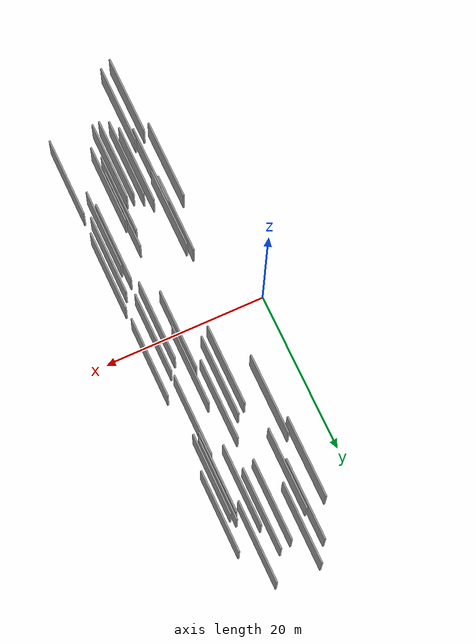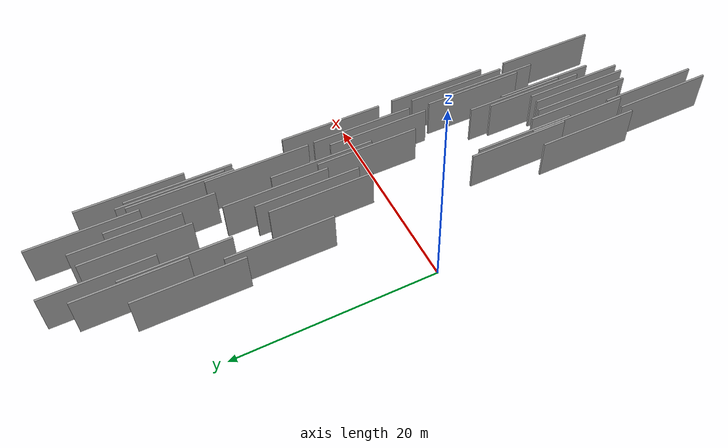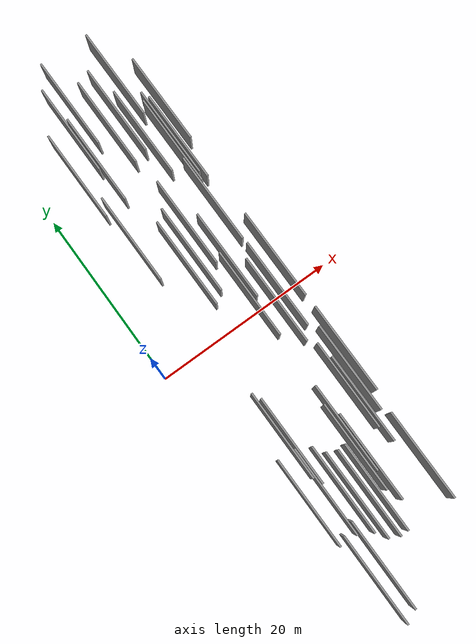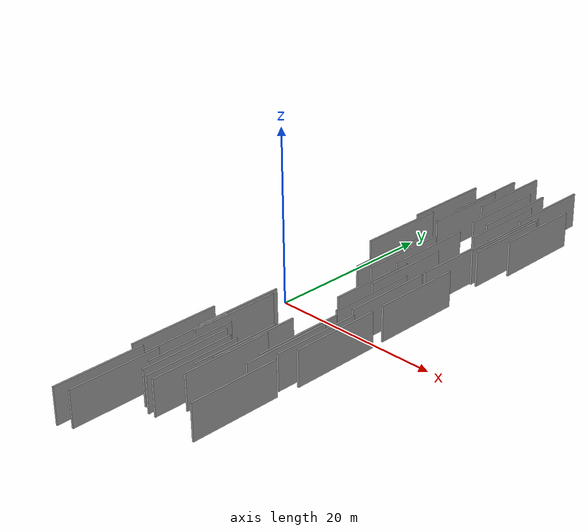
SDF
<sdf version="1.6">
 <world name="default">
  <scene>
   <sky><clouds><speed>12</speed></clouds></sky>
   <ambient>0.4 0.4 0.4 1</ambient>
   <background>0.7 0.7 0.7 1</background>
   <shadows>1</shadows>
  </scene>
  <gravity>0 0 -9.8066</gravity>
  <magnetic_field>6e-06 2.3e-05 -4.2e-05</magnetic_field>
  <physics default="0" name="default_physics" type="ode">
   <ode>
    <solver>
     <type>quick</type>
     <iters>10</iters>
     <sor>1.0</sor>
     <use_dynamic_moi_rescaling>0</use_dynamic_moi_rescaling>
    </solver>
    <constraints>
     <cfm>0</cfm>
     <erp>0.2</erp>
     <contact_max_correcting_vel>100</contact_max_correcting_vel>
     <contact_surface_layer>0.001</contact_surface_layer>
    </constraints>
   </ode>
   <max_step_size>0.004</max_step_size>
   <real_time_factor>1</real_time_factor>
   <real_time_update_rate>250</real_time_update_rate>
  </physics>
  <light name="sun" type="directional">
   <pose>0 0 10 0 0 0</pose>
   <diffuse>0.8 0.8 0.8 1</diffuse>
   <specular>0.2 0.2 0.2 1</specular>
   <attenuation>
    <range>1000</range>
    <constant>0.9</constant>
    <linear>0.01</linear>
    <quadratic>0.001</quadratic>
   </attenuation>
   <direction>-0.5 0.1 -0.9</direction>
  </light>
  <model name="grey_wall_1">
   <static>1</static>
   <pose>12.4541 20.6578 2.5 0.000000 0.000000 1.570796</pose>
   <link name="link">
    <pose>0 0 2.00 0 0 0</pose>
    <collision name="collision"><geometry><box><size>10.00 0.2 4.00</size></box></geometry></collision>
    <visual name="visual">
     <cast_shadows>0</cast_shadows>
     <geometry><box><size>10.00 0.2 4.00</size></box></geometry>
     <material>
      <script>
       <uri>model://grey_wall/materials/scripts</uri>
       <uri>model://grey_wall/materials/textures</uri>
       <name>vrc/grey_wall</name>
      </script>
     </material>
    </visual>
   </link>
  </model>
  <model name="grey_wall_2">
   <static>1</static>
   <pose>13.5971 27.1170 2.5 0.000000 0.000000 1.570796</pose>
   <link name="link">
    <pose>0 0 2.00 0 0 0</pose>
    <collision name="collision"><geometry><box><size>10.00 0.2 4.00</size></box></geometry></collision>
    <visual name="visual">
     <cast_shadows>0</cast_shadows>
     <geometry><box><size>10.00 0.2 4.00</size></box></geometry>
     <material>
      <script>
       <uri>model://grey_wall/materials/scripts</uri>
       <uri>model://grey_wall/materials/textures</uri>
       <name>vrc/grey_wall</name>
      </script>
     </material>
    </visual>
   </link>
  </model>
  <model name="grey_wall_3">
   <static>1</static>
   <pose>6.0778 -18.3121 2.5 0.000000 0.000000 1.570796</pose>
   <link name="link">
    <pose>0 0 2.00 0 0 0</pose>
    <collision name="collision"><geometry><box><size>10.00 0.2 4.00</size></box></geometry></collision>
    <visual name="visual">
     <cast_shadows>0</cast_shadows>
     <geometry><box><size>10.00 0.2 4.00</size></box></geometry>
     <material>
      <script>
       <uri>model://grey_wall/materials/scripts</uri>
       <uri>model://grey_wall/materials/textures</uri>
       <name>vrc/grey_wall</name>
      </script>
     </material>
    </visual>
   </link>
  </model>
  <model name="grey_wall_4">
   <static>1</static>
   <pose>15.9182 22.3405 2.5 0.000000 0.000000 1.570796</pose>
   <link name="link">
    <pose>0 0 2.00 0 0 0</pose>
    <collision name="collision"><geometry><box><size>10.00 0.2 4.00</size></box></geometry></collision>
    <visual name="visual">
     <cast_shadows>0</cast_shadows>
     <geometry><box><size>10.00 0.2 4.00</size></box></geometry>
     <material>
      <script>
       <uri>model://grey_wall/materials/scripts</uri>
       <uri>model://grey_wall/materials/textures</uri>
       <name>vrc/grey_wall</name>
      </script>
     </material>
    </visual>
   </link>
  </model>
  <model name="grey_wall_5">
   <static>1</static>
   <pose>8.2808 -20.3169 2.5 0.000000 0.000000 1.570796</pose>
   <link name="link">
    <pose>0 0 2.00 0 0 0</pose>
    <collision name="collision"><geometry><box><size>10.00 0.2 4.00</size></box></geometry></collision>
    <visual name="visual">
     <cast_shadows>0</cast_shadows>
     <geometry><box><size>10.00 0.2 4.00</size></box></geometry>
     <material>
      <script>
       <uri>model://grey_wall/materials/scripts</uri>
       <uri>model://grey_wall/materials/textures</uri>
       <name>vrc/grey_wall</name>
      </script>
     </material>
    </visual>
   </link>
  </model>
  <model name="grey_wall_6">
   <static>1</static>
   <pose>4.9916 -27.6208 2.5 0.000000 0.000000 1.570796</pose>
   <link name="link">
    <pose>0 0 2.00 0 0 0</pose>
    <collision name="collision"><geometry><box><size>10.00 0.2 4.00</size></box></geometry></collision>
    <visual name="visual">
     <cast_shadows>0</cast_shadows>
     <geometry><box><size>10.00 0.2 4.00</size></box></geometry>
     <material>
      <script>
       <uri>model://grey_wall/materials/scripts</uri>
       <uri>model://grey_wall/materials/textures</uri>
       <name>vrc/grey_wall</name>
      </script>
     </material>
    </visual>
   </link>
  </model>
  <model name="grey_wall_7">
   <static>1</static>
   <pose>14.3110 18.1891 2.5 0.000000 0.000000 1.570796</pose>
   <link name="link">
    <pose>0 0 2.00 0 0 0</pose>
    <collision name="collision"><geometry><box><size>10.00 0.2 4.00</size></box></geometry></collision>
    <visual name="visual">
     <cast_shadows>0</cast_shadows>
     <geometry><box><size>10.00 0.2 4.00</size></box></geometry>
     <material>
      <script>
       <uri>model://grey_wall/materials/scripts</uri>
       <uri>model://grey_wall/materials/textures</uri>
       <name>vrc/grey_wall</name>
      </script>
     </material>
    </visual>
   </link>
  </model>
  <model name="grey_wall_8">
   <static>1</static>
   <pose>15.8094 -8.4592 2.5 0.000000 0.000000 1.570796</pose>
   <link name="link">
    <pose>0 0 2.00 0 0 0</pose>
    <collision name="collision"><geometry><box><size>10.00 0.2 4.00</size></box></geometry></collision>
    <visual name="visual">
     <cast_shadows>0</cast_shadows>
     <geometry><box><size>10.00 0.2 4.00</size></box></geometry>
     <material>
      <script>
       <uri>model://grey_wall/materials/scripts</uri>
       <uri>model://grey_wall/materials/textures</uri>
       <name>vrc/grey_wall</name>
      </script>
     </material>
    </visual>
   </link>
  </model>
  <model name="grey_wall_9">
   <static>1</static>
   <pose>9.3929 8.1544 2.5 0.000000 0.000000 1.570796</pose>
   <link name="link">
    <pose>0 0 2.00 0 0 0</pose>
    <collision name="collision"><geometry><box><size>10.00 0.2 4.00</size></box></geometry></collision>
    <visual name="visual">
     <cast_shadows>0</cast_shadows>
     <geometry><box><size>10.00 0.2 4.00</size></box></geometry>
     <material>
      <script>
       <uri>model://grey_wall/materials/scripts</uri>
       <uri>model://grey_wall/materials/textures</uri>
       <name>vrc/grey_wall</name>
      </script>
     </material>
    </visual>
   </link>
  </model>
  <model name="grey_wall_10">
   <static>1</static>
   <pose>11.5870 23.9540 2.5 0.000000 0.000000 1.570796</pose>
   <link name="link">
    <pose>0 0 2.00 0 0 0</pose>
    <collision name="collision"><geometry><box><size>10.00 0.2 4.00</size></box></geometry></collision>
    <visual name="visual">
     <cast_shadows>0</cast_shadows>
     <geometry><box><size>10.00 0.2 4.00</size></box></geometry>
     <material>
      <script>
       <uri>model://grey_wall/materials/scripts</uri>
       <uri>model://grey_wall/materials/textures</uri>
       <name>vrc/grey_wall</name>
      </script>
     </material>
    </visual>
   </link>
  </model>
  <model name="grey_wall_11">
   <static>1</static>
   <pose>6.7561 24.9841 2.5 0.000000 0.000000 1.570796</pose>
   <link name="link">
    <pose>0 0 2.00 0 0 0</pose>
    <collision name="collision"><geometry><box><size>10.00 0.2 4.00</size></box></geometry></collision>
    <visual name="visual">
     <cast_shadows>0</cast_shadows>
     <geometry><box><size>10.00 0.2 4.00</size></box></geometry>
     <material>
      <script>
       <uri>model://grey_wall/materials/scripts</uri>
       <uri>model://grey_wall/materials/textures</uri>
       <name>vrc/grey_wall</name>
      </script>
     </material>
    </visual>
   </link>
  </model>
  <model name="grey_wall_12">
   <static>1</static>
   <pose>4.5698 20.7180 2.5 0.000000 0.000000 1.570796</pose>
   <link name="link">
    <pose>0 0 2.00 0 0 0</pose>
    <collision name="collision"><geometry><box><size>10.00 0.2 4.00</size></box></geometry></collision>
    <visual name="visual">
     <cast_shadows>0</cast_shadows>
     <geometry><box><size>10.00 0.2 4.00</size></box></geometry>
     <material>
      <script>
       <uri>model://grey_wall/materials/scripts</uri>
       <uri>model://grey_wall/materials/textures</uri>
       <name>vrc/grey_wall</name>
      </script>
     </material>
    </visual>
   </link>
  </model>
  <model name="grey_wall_13">
   <static>1</static>
   <pose>11.8927 5.6557 2.5 0.000000 0.000000 1.570796</pose>
   <link name="link">
    <pose>0 0 2.00 0 0 0</pose>
    <collision name="collision"><geometry><box><size>10.00 0.2 4.00</size></box></geometry></collision>
    <visual name="visual">
     <cast_shadows>0</cast_shadows>
     <geometry><box><size>10.00 0.2 4.00</size></box></geometry>
     <material>
      <script>
       <uri>model://grey_wall/materials/scripts</uri>
       <uri>model://grey_wall/materials/textures</uri>
       <name>vrc/grey_wall</name>
      </script>
     </material>
    </visual>
   </link>
  </model>
  <model name="grey_wall_14">
   <static>1</static>
   <pose>10.6268 10.6538 2.5 0.000000 0.000000 1.570796</pose>
   <link name="link">
    <pose>0 0 2.00 0 0 0</pose>
    <collision name="collision"><geometry><box><size>10.00 0.2 4.00</size></box></geometry></collision>
    <visual name="visual">
     <cast_shadows>0</cast_shadows>
     <geometry><box><size>10.00 0.2 4.00</size></box></geometry>
     <material>
      <script>
       <uri>model://grey_wall/materials/scripts</uri>
       <uri>model://grey_wall/materials/textures</uri>
       <name>vrc/grey_wall</name>
      </script>
     </material>
    </visual>
   </link>
  </model>
  <model name="grey_wall_15">
   <static>1</static>
   <pose>10.8824 -16.5831 2.5 0.000000 0.000000 1.570796</pose>
   <link name="link">
    <pose>0 0 2.00 0 0 0</pose>
    <collision name="collision"><geometry><box><size>10.00 0.2 4.00</size></box></geometry></collision>
    <visual name="visual">
     <cast_shadows>0</cast_shadows>
     <geometry><box><size>10.00 0.2 4.00</size></box></geometry>
     <material>
      <script>
       <uri>model://grey_wall/materials/scripts</uri>
       <uri>model://grey_wall/materials/textures</uri>
       <name>vrc/grey_wall</name>
      </script>
     </material>
    </visual>
   </link>
  </model>
  <model name="grey_wall_16">
   <static>1</static>
   <pose>8.2525 7.3279 2.5 0.000000 0.000000 1.570796</pose>
   <link name="link">
    <pose>0 0 2.00 0 0 0</pose>
    <collision name="collision"><geometry><box><size>10.00 0.2 4.00</size></box></geometry></collision>
    <visual name="visual">
     <cast_shadows>0</cast_shadows>
     <geometry><box><size>10.00 0.2 4.00</size></box></geometry>
     <material>
      <script>
       <uri>model://grey_wall/materials/scripts</uri>
       <uri>model://grey_wall/materials/textures</uri>
       <name>vrc/grey_wall</name>
      </script>
     </material>
    </visual>
   </link>
  </model>
  <model name="grey_wall_17">
   <static>1</static>
   <pose>10.2123 -20.7871 2.5 0.000000 0.000000 1.570796</pose>
   <link name="link">
    <pose>0 0 2.00 0 0 0</pose>
    <collision name="collision"><geometry><box><size>10.00 0.2 4.00</size></box></geometry></collision>
    <visual name="visual">
     <cast_shadows>0</cast_shadows>
     <geometry><box><size>10.00 0.2 4.00</size></box></geometry>
     <material>
      <script>
       <uri>model://grey_wall/materials/scripts</uri>
       <uri>model://grey_wall/materials/textures</uri>
       <name>vrc/grey_wall</name>
      </script>
     </material>
    </visual>
   </link>
  </model>
  <model name="grey_wall_18">
   <static>1</static>
   <pose>14.6173 19.0087 2.5 0.000000 0.000000 1.570796</pose>
   <link name="link">
    <pose>0 0 2.00 0 0 0</pose>
    <collision name="collision"><geometry><box><size>10.00 0.2 4.00</size></box></geometry></collision>
    <visual name="visual">
     <cast_shadows>0</cast_shadows>
     <geometry><box><size>10.00 0.2 4.00</size></box></geometry>
     <material>
      <script>
       <uri>model://grey_wall/materials/scripts</uri>
       <uri>model://grey_wall/materials/textures</uri>
       <name>vrc/grey_wall</name>
      </script>
     </material>
    </visual>
   </link>
  </model>
  <model name="grey_wall_19">
   <static>1</static>
   <pose>7.5287 -19.1301 2.5 0.000000 0.000000 1.570796</pose>
   <link name="link">
    <pose>0 0 2.00 0 0 0</pose>
    <collision name="collision"><geometry><box><size>10.00 0.2 4.00</size></box></geometry></collision>
    <visual name="visual">
     <cast_shadows>0</cast_shadows>
     <geometry><box><size>10.00 0.2 4.00</size></box></geometry>
     <material>
      <script>
       <uri>model://grey_wall/materials/scripts</uri>
       <uri>model://grey_wall/materials/textures</uri>
       <name>vrc/grey_wall</name>
      </script>
     </material>
    </visual>
   </link>
  </model>
  <model name="grey_wall_20">
   <static>1</static>
   <pose>15.0005 -10.2229 2.5 0.000000 0.000000 1.570796</pose>
   <link name="link">
    <pose>0 0 2.00 0 0 0</pose>
    <collision name="collision"><geometry><box><size>10.00 0.2 4.00</size></box></geometry></collision>
    <visual name="visual">
     <cast_shadows>0</cast_shadows>
     <geometry><box><size>10.00 0.2 4.00</size></box></geometry>
     <material>
      <script>
       <uri>model://grey_wall/materials/scripts</uri>
       <uri>model://grey_wall/materials/textures</uri>
       <name>vrc/grey_wall</name>
      </script>
     </material>
    </visual>
   </link>
  </model>
  <model name="grey_wall_21">
   <static>1</static>
   <pose>14.2171 -13.3017 2.5 0.000000 0.000000 1.570796</pose>
   <link name="link">
    <pose>0 0 2.00 0 0 0</pose>
    <collision name="collision"><geometry><box><size>10.00 0.2 4.00</size></box></geometry></collision>
    <visual name="visual">
     <cast_shadows>0</cast_shadows>
     <geometry><box><size>10.00 0.2 4.00</size></box></geometry>
     <material>
      <script>
       <uri>model://grey_wall/materials/scripts</uri>
       <uri>model://grey_wall/materials/textures</uri>
       <name>vrc/grey_wall</name>
      </script>
     </material>
    </visual>
   </link>
  </model>
  <model name="grey_wall_22">
   <static>1</static>
   <pose>15.5839 -20.9502 2.5 0.000000 0.000000 1.570796</pose>
   <link name="link">
    <pose>0 0 2.00 0 0 0</pose>
    <collision name="collision"><geometry><box><size>10.00 0.2 4.00</size></box></geometry></collision>
    <visual name="visual">
     <cast_shadows>0</cast_shadows>
     <geometry><box><size>10.00 0.2 4.00</size></box></geometry>
     <material>
      <script>
       <uri>model://grey_wall/materials/scripts</uri>
       <uri>model://grey_wall/materials/textures</uri>
       <name>vrc/grey_wall</name>
      </script>
     </material>
    </visual>
   </link>
  </model>
  <model name="grey_wall_23">
   <static>1</static>
   <pose>14.9914 18.1844 2.5 0.000000 0.000000 1.570796</pose>
   <link name="link">
    <pose>0 0 2.00 0 0 0</pose>
    <collision name="collision"><geometry><box><size>10.00 0.2 4.00</size></box></geometry></collision>
    <visual name="visual">
     <cast_shadows>0</cast_shadows>
     <geometry><box><size>10.00 0.2 4.00</size></box></geometry>
     <material>
      <script>
       <uri>model://grey_wall/materials/scripts</uri>
       <uri>model://grey_wall/materials/textures</uri>
       <name>vrc/grey_wall</name>
      </script>
     </material>
    </visual>
   </link>
  </model>
  <model name="grey_wall_24">
   <static>1</static>
   <pose>9.3542 -20.8267 2.5 0.000000 0.000000 1.570796</pose>
   <link name="link">
    <pose>0 0 2.00 0 0 0</pose>
    <collision name="collision"><geometry><box><size>10.00 0.2 4.00</size></box></geometry></collision>
    <visual name="visual">
     <cast_shadows>0</cast_shadows>
     <geometry><box><size>10.00 0.2 4.00</size></box></geometry>
     <material>
      <script>
       <uri>model://grey_wall/materials/scripts</uri>
       <uri>model://grey_wall/materials/textures</uri>
       <name>vrc/grey_wall</name>
      </script>
     </material>
    </visual>
   </link>
  </model>
  <model name="grey_wall_25">
   <static>1</static>
   <pose>4.1508 -18.2466 2.5 0.000000 0.000000 1.570796</pose>
   <link name="link">
    <pose>0 0 2.00 0 0 0</pose>
    <collision name="collision"><geometry><box><size>10.00 0.2 4.00</size></box></geometry></collision>
    <visual name="visual">
     <cast_shadows>0</cast_shadows>
     <geometry><box><size>10.00 0.2 4.00</size></box></geometry>
     <material>
      <script>
       <uri>model://grey_wall/materials/scripts</uri>
       <uri>model://grey_wall/materials/textures</uri>
       <name>vrc/grey_wall</name>
      </script>
     </material>
    </visual>
   </link>
  </model>
  <model name="grey_wall_26">
   <static>1</static>
   <pose>13.1844 -0.7295 2.5 0.000000 0.000000 1.570796</pose>
   <link name="link">
    <pose>0 0 2.00 0 0 0</pose>
    <collision name="collision"><geometry><box><size>10.00 0.2 4.00</size></box></geometry></collision>
    <visual name="visual">
     <cast_shadows>0</cast_shadows>
     <geometry><box><size>10.00 0.2 4.00</size></box></geometry>
     <material>
      <script>
       <uri>model://grey_wall/materials/scripts</uri>
       <uri>model://grey_wall/materials/textures</uri>
       <name>vrc/grey_wall</name>
      </script>
     </material>
    </visual>
   </link>
  </model>
  <model name="grey_wall_27">
   <static>1</static>
   <pose>10.0969 23.5168 2.5 0.000000 0.000000 1.570796</pose>
   <link name="link">
    <pose>0 0 2.00 0 0 0</pose>
    <collision name="collision"><geometry><box><size>10.00 0.2 4.00</size></box></geometry></collision>
    <visual name="visual">
     <cast_shadows>0</cast_shadows>
     <geometry><box><size>10.00 0.2 4.00</size></box></geometry>
     <material>
      <script>
       <uri>model://grey_wall/materials/scripts</uri>
       <uri>model://grey_wall/materials/textures</uri>
       <name>vrc/grey_wall</name>
      </script>
     </material>
    </visual>
   </link>
  </model>
  <model name="grey_wall_28">
   <static>1</static>
   <pose>6.3050 -12.5777 2.5 0.000000 0.000000 1.570796</pose>
   <link name="link">
    <pose>0 0 2.00 0 0 0</pose>
    <collision name="collision"><geometry><box><size>10.00 0.2 4.00</size></box></geometry></collision>
    <visual name="visual">
     <cast_shadows>0</cast_shadows>
     <geometry><box><size>10.00 0.2 4.00</size></box></geometry>
     <material>
      <script>
       <uri>model://grey_wall/materials/scripts</uri>
       <uri>model://grey_wall/materials/textures</uri>
       <name>vrc/grey_wall</name>
      </script>
     </material>
    </visual>
   </link>
  </model>
  <model name="grey_wall_29">
   <static>1</static>
   <pose>8.2125 27.2568 2.5 0.000000 0.000000 1.570796</pose>
   <link name="link">
    <pose>0 0 2.00 0 0 0</pose>
    <collision name="collision"><geometry><box><size>10.00 0.2 4.00</size></box></geometry></collision>
    <visual name="visual">
     <cast_shadows>0</cast_shadows>
     <geometry><box><size>10.00 0.2 4.00</size></box></geometry>
     <material>
      <script>
       <uri>model://grey_wall/materials/scripts</uri>
       <uri>model://grey_wall/materials/textures</uri>
       <name>vrc/grey_wall</name>
      </script>
     </material>
    </visual>
   </link>
  </model>
  <model name="grey_wall_30">
   <static>1</static>
   <pose>11.2568 -14.6252 2.5 0.000000 0.000000 1.570796</pose>
   <link name="link">
    <pose>0 0 2.00 0 0 0</pose>
    <collision name="collision"><geometry><box><size>10.00 0.2 4.00</size></box></geometry></collision>
    <visual name="visual">
     <cast_shadows>0</cast_shadows>
     <geometry><box><size>10.00 0.2 4.00</size></box></geometry>
     <material>
      <script>
       <uri>model://grey_wall/materials/scripts</uri>
       <uri>model://grey_wall/materials/textures</uri>
       <name>vrc/grey_wall</name>
      </script>
     </material>
    </visual>
   </link>
  </model>
  <model name="grey_wall_31">
   <static>1</static>
   <pose>6.3940 -26.9403 2.5 0.000000 0.000000 1.570796</pose>
   <link name="link">
    <pose>0 0 2.00 0 0 0</pose>
    <collision name="collision"><geometry><box><size>10.00 0.2 4.00</size></box></geometry></collision>
    <visual name="visual">
     <cast_shadows>0</cast_shadows>
     <geometry><box><size>10.00 0.2 4.00</size></box></geometry>
     <material>
      <script>
       <uri>model://grey_wall/materials/scripts</uri>
       <uri>model://grey_wall/materials/textures</uri>
       <name>vrc/grey_wall</name>
      </script>
     </material>
    </visual>
   </link>
  </model>
  <model name="grey_wall_32">
   <static>1</static>
   <pose>13.8480 -11.4380 2.5 0.000000 0.000000 1.570796</pose>
   <link name="link">
    <pose>0 0 2.00 0 0 0</pose>
    <collision name="collision"><geometry><box><size>10.00 0.2 4.00</size></box></geometry></collision>
    <visual name="visual">
     <cast_shadows>0</cast_shadows>
     <geometry><box><size>10.00 0.2 4.00</size></box></geometry>
     <material>
      <script>
       <uri>model://grey_wall/materials/scripts</uri>
       <uri>model://grey_wall/materials/textures</uri>
       <name>vrc/grey_wall</name>
      </script>
     </material>
    </visual>
   </link>
  </model>
  <model name="grey_wall_33">
   <static>1</static>
   <pose>14.1765 0.4824 2.5 0.000000 0.000000 1.570796</pose>
   <link name="link">
    <pose>0 0 2.00 0 0 0</pose>
    <collision name="collision"><geometry><box><size>10.00 0.2 4.00</size></box></geometry></collision>
    <visual name="visual">
     <cast_shadows>0</cast_shadows>
     <geometry><box><size>10.00 0.2 4.00</size></box></geometry>
     <material>
      <script>
       <uri>model://grey_wall/materials/scripts</uri>
       <uri>model://grey_wall/materials/textures</uri>
       <name>vrc/grey_wall</name>
      </script>
     </material>
    </visual>
   </link>
  </model>
  <model name="grey_wall_34">
   <static>1</static>
   <pose>5.8762 -11.6508 2.5 0.000000 0.000000 1.570796</pose>
   <link name="link">
    <pose>0 0 2.00 0 0 0</pose>
    <collision name="collision"><geometry><box><size>10.00 0.2 4.00</size></box></geometry></collision>
    <visual name="visual">
     <cast_shadows>0</cast_shadows>
     <geometry><box><size>10.00 0.2 4.00</size></box></geometry>
     <material>
      <script>
       <uri>model://grey_wall/materials/scripts</uri>
       <uri>model://grey_wall/materials/textures</uri>
       <name>vrc/grey_wall</name>
      </script>
     </material>
    </visual>
   </link>
  </model>
  <model name="grey_wall_35">
   <static>1</static>
   <pose>7.0718 21.0249 2.5 0.000000 0.000000 1.570796</pose>
   <link name="link">
    <pose>0 0 2.00 0 0 0</pose>
    <collision name="collision"><geometry><box><size>10.00 0.2 4.00</size></box></geometry></collision>
    <visual name="visual">
     <cast_shadows>0</cast_shadows>
     <geometry><box><size>10.00 0.2 4.00</size></box></geometry>
     <material>
      <script>
       <uri>model://grey_wall/materials/scripts</uri>
       <uri>model://grey_wall/materials/textures</uri>
       <name>vrc/grey_wall</name>
      </script>
     </material>
    </visual>
   </link>
  </model>
  <model name="grey_wall_36">
   <static>1</static>
   <pose>5.2538 12.4773 2.5 0.000000 0.000000 1.570796</pose>
   <link name="link">
    <pose>0 0 2.00 0 0 0</pose>
    <collision name="collision"><geometry><box><size>10.00 0.2 4.00</size></box></geometry></collision>
    <visual name="visual">
     <cast_shadows>0</cast_shadows>
     <geometry><box><size>10.00 0.2 4.00</size></box></geometry>
     <material>
      <script>
       <uri>model://grey_wall/materials/scripts</uri>
       <uri>model://grey_wall/materials/textures</uri>
       <name>vrc/grey_wall</name>
      </script>
     </material>
    </visual>
   </link>
  </model>
  <model name="grey_wall_37">
   <static>1</static>
   <pose>14.0892 11.0780 2.5 0.000000 0.000000 1.570796</pose>
   <link name="link">
    <pose>0 0 2.00 0 0 0</pose>
    <collision name="collision"><geometry><box><size>10.00 0.2 4.00</size></box></geometry></collision>
    <visual name="visual">
     <cast_shadows>0</cast_shadows>
     <geometry><box><size>10.00 0.2 4.00</size></box></geometry>
     <material>
      <script>
       <uri>model://grey_wall/materials/scripts</uri>
       <uri>model://grey_wall/materials/textures</uri>
       <name>vrc/grey_wall</name>
      </script>
     </material>
    </visual>
   </link>
  </model>
  <model name="grey_wall_38">
   <static>1</static>
   <pose>15.7354 2.9768 2.5 0.000000 0.000000 1.570796</pose>
   <link name="link">
    <pose>0 0 2.00 0 0 0</pose>
    <collision name="collision"><geometry><box><size>10.00 0.2 4.00</size></box></geometry></collision>
    <visual name="visual">
     <cast_shadows>0</cast_shadows>
     <geometry><box><size>10.00 0.2 4.00</size></box></geometry>
     <material>
      <script>
       <uri>model://grey_wall/materials/scripts</uri>
       <uri>model://grey_wall/materials/textures</uri>
       <name>vrc/grey_wall</name>
      </script>
     </material>
    </visual>
   </link>
  </model>
  <model name="grey_wall_39">
   <static>1</static>
   <pose>11.4410 1.2914 2.5 0.000000 0.000000 1.570796</pose>
   <link name="link">
    <pose>0 0 2.00 0 0 0</pose>
    <collision name="collision"><geometry><box><size>10.00 0.2 4.00</size></box></geometry></collision>
    <visual name="visual">
     <cast_shadows>0</cast_shadows>
     <geometry><box><size>10.00 0.2 4.00</size></box></geometry>
     <material>
      <script>
       <uri>model://grey_wall/materials/scripts</uri>
       <uri>model://grey_wall/materials/textures</uri>
       <name>vrc/grey_wall</name>
      </script>
     </material>
    </visual>
   </link>
  </model>
  <model name="grey_wall_40">
   <static>1</static>
   <pose>11.5162 -18.1661 2.5 0.000000 0.000000 1.570796</pose>
   <link name="link">
    <pose>0 0 2.00 0 0 0</pose>
    <collision name="collision"><geometry><box><size>10.00 0.2 4.00</size></box></geometry></collision>
    <visual name="visual">
     <cast_shadows>0</cast_shadows>
     <geometry><box><size>10.00 0.2 4.00</size></box></geometry>
     <material>
      <script>
       <uri>model://grey_wall/materials/scripts</uri>
       <uri>model://grey_wall/materials/textures</uri>
       <name>vrc/grey_wall</name>
      </script>
     </material>
    </visual>
   </link>
  </model>
 </world>
</sdf>
